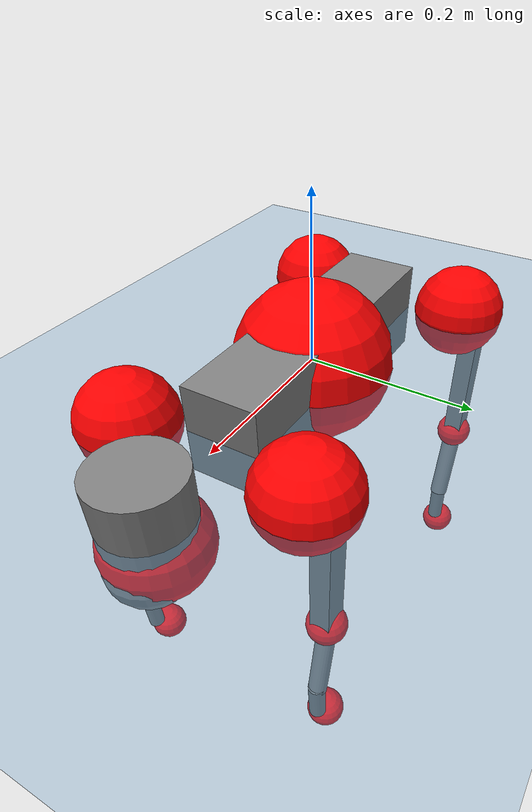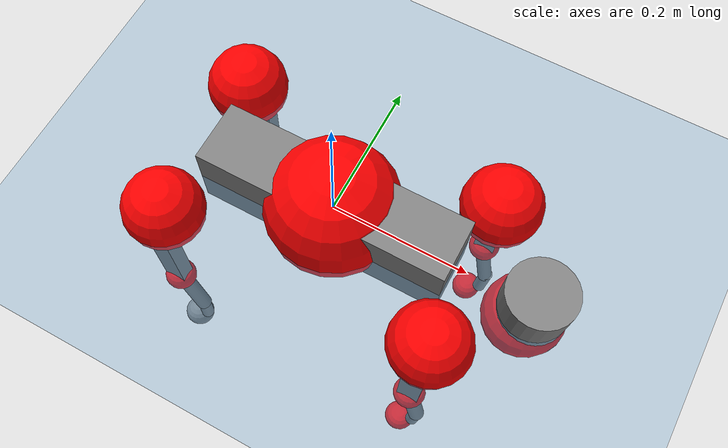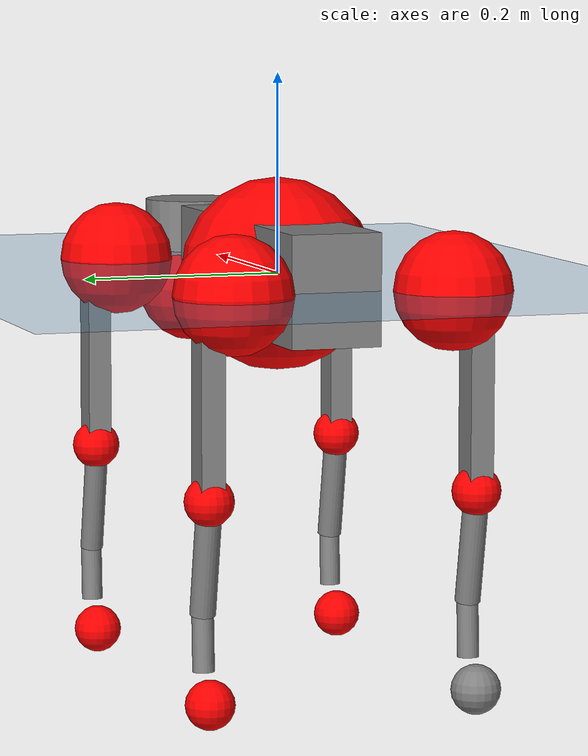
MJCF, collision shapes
<mujoco model="go2">
  <compiler angle="radian" assetdir="assets" balanceinertia="true" inertiafromgeom="false"/>

  <option timestep="0.005" density="1.2" viscosity="2e-05"/>

  <size nkey="1"/>

  <visual>
    <quality shadowsize="8192"/>
    <map shadowclip="0.5"/>
  </visual>

  <default>
    <default class="/">
      <geom contype="0" conaffinity="0" group="1" solref="-1000 -80"/>
      <site size="0.01 0.005 0.005" group="5"/>
      <general forcelimited="true" biastype="affine" gainprm="20" biasprm="0 -20 -0.5"/>
      <default class="go2">
        <joint armature="0.01" damping="0.01" frictionloss="0.2"/>
        <geom condim="1" margin="0.001"/>
        <default class="visual">
          <geom type="mesh" group="2"/>
        </default>
        <default class="collision">
          <geom group="3"/>
          <default class="foot">
            <geom size="0.022 0 0" condim="6" priority="1" friction="0.8 0.02 0.01" solimp="0.015 1 0.022"/>
          </default>
        </default>
        <default class="reward_collision_sphere">
          <geom group="5" rgba="1 0 0 1"/>
        </default>
      </default>
    </default>
  </default>

  <asset>
    <texture type="skybox" colorspace="auto" name="//unnamed_texture_0" builtin="gradient" rgb1="0.95 0.95 0.95" rgb2="0.95 0.95 0.95" width="100" height="600"/>
    <texture type="2d" colorspace="auto" name="texplane" builtin="checker" rgb1="0.345 0.575 0.748" rgb2="0.345 0.575 0.748" markrgb="1 1 1" width="512" height="512"/>
    <material name="MatPlane" class="/" texture="texplane" texuniform="true" texrepeat="2 2" specular="0.9"/>
    <material name="metal" class="/" rgba="0.9 0.95 0.95 1"/>
    <material name="black" class="/" rgba="0 0 0 1"/>
    <material name="white" class="/"/>
    <material name="gray" class="/" rgba="0.671705 0.692426 0.77427 1"/>
    <mesh name="base_0" class="/" file="base_0.obj"/>
    <mesh name="base_1" class="/" file="base_1.obj"/>
    <mesh name="base_2" class="/" file="base_2.obj"/>
    <mesh name="base_3" class="/" file="base_3.obj"/>
    <mesh name="base_4" class="/" file="base_4.obj"/>
    <mesh name="hip_0" class="/" file="hip_0.obj"/>
    <mesh name="hip_1" class="/" file="hip_1.obj"/>
    <mesh name="thigh_0" class="/" file="thigh_0.obj"/>
    <mesh name="thigh_1" class="/" file="thigh_1.obj"/>
    <mesh name="thigh_mirror_0" class="/" file="thigh_mirror_0.obj"/>
    <mesh name="thigh_mirror_1" class="/" file="thigh_mirror_1.obj"/>
    <mesh name="calf_0" class="/" file="calf_0.obj"/>
    <mesh name="calf_1" class="/" file="calf_1.obj"/>
    <mesh name="calf_mirror_0" class="/" file="calf_mirror_0.obj"/>
    <mesh name="calf_mirror_1" class="/" file="calf_mirror_1.obj"/>
    <mesh name="foot" class="/" file="foot.obj"/>
  </asset>

  <worldbody>
    <geom name="floor" class="/" size="100 100 0.125" type="plane" group="0" material="MatPlane"/>
    <light name="toplight_shadow" class="/" pos="0 0 5" dir="0.0990148 0.0990148 -0.990148" type="directional" ambient="0.04 0.04 0.04" diffuse="0.55 0.55 0.55" specular="0.12 0.12 0.12"/>
    <light name="toplight_fill" class="/" pos="0 0 5" dir="0.0990148 0.0990148 -0.990148" type="directional" castshadow="false" ambient="0.04 0.04 0.04" diffuse="0.3 0.3 0.3" specular="0.08 0.08 0.08"/>
    <body name="trunk" childclass="go2" pos="-6.27479e-05 0.00073114 0.000173393" quat="1 -0.000216542 0.000278449 5.95329e-05">
      <inertial pos="0.0227342 -0.00116683 -0.00543931" quat="-0.00434153 0.713403 0.0010931 0.700739" mass="6.12113" diaginertia="0.12356 0.0735346 0.0155372"/>
      <joint name="//unnamed_joint_0" type="free" armature="0" damping="0" frictionloss="0"/>
      <geom name="//unnamed_geom_1" class="visual" material="black" mesh="base_0"/>
      <geom name="//unnamed_geom_2" class="visual" material="black" mesh="base_1"/>
      <geom name="//unnamed_geom_3" class="visual" material="black" mesh="base_2"/>
      <geom name="//unnamed_geom_4" class="visual" material="white" mesh="base_3"/>
      <geom name="//unnamed_geom_5" class="visual" material="gray" mesh="base_4"/>
      <geom name="trunk_1" class="collision" size="0.181657 0.0451487 0.0550476" type="box"/>
      <geom name="trunk_2" class="collision" size="0.0482873 0.0434586" pos="0.294936 0 0.00915848" type="cylinder"/>
      <geom name="trunk_3" class="collision" size="0.0453901" pos="0.303215 0 -0.0549509"/>
      <geom name="//unnamed_geom_9" class="reward_collision_sphere" size="0.0965747"/>
      <geom name="//unnamed_geom_10" class="reward_collision_sphere" size="0.0579448" pos="0.289762 0 -0.0412132"/>
      <site name="imu" pos="-0.0272539 -0.00133017 0.0373989" size="0.00965747"/>
      <camera name="track" pos="0 -1.89306 0" quat="0.707107 0.707107 0 0" mode="trackcom"/>
      <camera name="ego_camera" pos="0.322877 0 0.0412132" quat="-0.5 -0.5 0.5 0.5"/>
      <body name="FL_hip" pos="0.199448 0.0442281 0.000507057" quat="1 3.32686e-07 6.99819e-06 -4.37653e-06">
        <inertial pos="-0.00560066 0.00220004 -0.00015078" quat="0.49759 0.498559 0.500017 0.503812" mass="0.612696" diaginertia="0.0010577 0.000460239 0.000312187"/>
        <joint name="FL_hip_joint" pos="0 0 0" axis="1 0.000155901 -0.000834093" stiffness="0.00965835" range="-1.02886 1.03879" armature="0.00975566" damping="0.00805904" frictionloss="0.191189"/>
        <geom name="//unnamed_geom_11" class="visual" material="metal" mesh="hip_0"/>
        <geom name="//unnamed_geom_12" class="visual" material="gray" mesh="hip_1"/>
        <geom name="//unnamed_geom_13" class="collision" size="0.0444243 0.0193149" pos="0 0.0757222 0" quat="0.707107 0.707107 0 0" type="cylinder"/>
        <geom name="//unnamed_geom_14" class="reward_collision_sphere" size="0.0579448" pos="0 0.066257 0"/>
        <body name="FL_thigh" pos="-0.00100357 0.0892958 0.000378265" quat="1 0.000472632 -0.000397716 0.000119681">
          <inertial pos="-0.00379606 -0.0195565 -0.0300807" quat="0.827713 0.0859223 -0.0202553 0.554165" mass="1.02813" diaginertia="0.0070453 0.00451046 0.00056835"/>
          <joint name="FL_thigh_joint" pos="0 0 0" axis="-0.00375511 0.999992 0.00155891" stiffness="0.00348165" range="-1.554 3.47912" armature="0.0102507" damping="0.00782305" frictionloss="0.202227"/>
          <geom name="//unnamed_geom_15" class="visual" material="metal" mesh="thigh_0"/>
          <geom name="//unnamed_geom_16" class="visual" material="gray" mesh="thigh_1"/>
          <geom name="//unnamed_geom_17" class="collision" size="0.102852 0.0118304 0.0164177" pos="0 0 -0.0975378" quat="0.707107 0 0.707107 0" type="box"/>
          <body name="FL_calf" pos="-0.000790257 0.000334283 -0.195454" quat="1 -3.37244e-05 -3.32843e-05 -5.13848e-05">
            <inertial pos="0.00621523 0.000342946 -0.128896" quat="0.709464 0.00251766 -0.00326462 0.70473" mass="0.218636" diaginertia="0.00178961 0.00113387 3.45313e-05"/>
            <joint name="FL_calf_joint" pos="0 0 0" axis="-0.000241409 1 0.000452587" stiffness="0.000206029" range="-2.69835 -0.838571" armature="0.0101453" damping="0.00275999" frictionloss="0.190454"/>
            <geom name="//unnamed_geom_18" class="visual" material="gray" mesh="calf_0"/>
            <geom name="//unnamed_geom_19" class="visual" material="black" mesh="calf_1"/>
            <geom name="FL_calf0" class="collision" size="0.011589 0.0579448" pos="0.00827891 0 -0.0549509" quat="0.994493 0 -0.104807 0" type="cylinder"/>
            <geom name="//unnamed_geom_21" class="collision" size="0.0106232 0.0313868" pos="0.0206973 0 -0.135546" quat="0.999688 0 0.0249974 0" type="cylinder"/>
            <geom name="//unnamed_geom_22" class="visual" pos="0 0 -0.195076" quat="1 0 0 0" material="black" mesh="foot"/>
            <geom name="FL_foot" class="foot" size="0.0163647" pos="-0.00206973 0 -0.195076"/>
            <geom name="//unnamed_geom_24" class="reward_collision_sphere" size="0.0241437"/>
            <geom name="//unnamed_geom_25" class="reward_collision_sphere" size="0.0241437" pos="-0.00206973 0 -0.195076"/>
            <site name="FL_foot" class="foot" pos="-0.00206973 0 -0.195076" size="0.00965747"/>
          </body>
        </body>
      </body>
      <body name="FR_hip" pos="0.199479 -0.0422503 -0.000431495" quat="1 3.91578e-06 0.000136314 -9.87736e-05">
        <inertial pos="-0.00575847 -0.00225471 -0.00033298" quat="0.49823 0.503454 0.501179 0.497112" mass="0.614848" diaginertia="0.0010565 0.000453127 0.000307539"/>
        <joint name="FR_hip_joint" pos="0 0 0" axis="0.999968 -0.00725729 0.00324073" range="-1.04208 1.05261" armature="0.0101388" damping="0.0180261" frictionloss="0.193169"/>
        <geom name="//unnamed_geom_26" class="visual" pos="0 2.67269e-10 1.14637e-08" quat="4.63268e-05 1 0 0" material="metal" mesh="hip_0"/>
        <geom name="//unnamed_geom_27" class="visual" pos="0 4.33276e-10 -2.83542e-08" quat="4.63268e-05 1 0 0" material="gray" mesh="hip_1"/>
        <geom name="//unnamed_geom_28" class="collision" size="0.0444243 0.0193149" pos="0 -0.0757222 0" quat="0.707107 0.707107 0 0" type="cylinder"/>
        <geom name="//unnamed_geom_29" class="reward_collision_sphere" size="0.0579448" pos="0 -0.066257 0"/>
        <body name="FR_thigh" pos="-0.00029488 -0.0900102 -0.00033593" quat="1 1.20093e-05 -5.41688e-05 8.21801e-05">
          <inertial pos="-0.00498382 0.0220196 -0.0290207" quat="0.551007 -0.0210418 0.0866907 0.829719" mass="1.03854" diaginertia="0.0071363 0.00444198 0.000566811"/>
          <joint name="FR_thigh_joint" pos="0 0 0" axis="0.000127757 -1 -7.80851e-05" stiffness="0.00641644" range="-3.48577 1.56496" armature="0.00944539" damping="0.012061" frictionloss="0.201609"/>
          <geom name="//unnamed_geom_30" class="visual" material="metal" mesh="thigh_mirror_0"/>
          <geom name="//unnamed_geom_31" class="visual" material="gray" mesh="thigh_mirror_1"/>
          <geom name="//unnamed_geom_32" class="collision" size="0.102852 0.0118304 0.0164177" pos="0 0 -0.0975378" quat="0.707107 0 0.707107 0" type="box"/>
          <body name="FR_calf" pos="-8.1253e-05 0.000200776 -0.194234" quat="1 -1.56715e-05 0.000125789 0.000185864">
            <inertial pos="0.00733308 -9.50179e-06 -0.129614" quat="0.705661 -0.00431669 -0.000604899 0.708536" mass="0.22093" diaginertia="0.00181032 0.00112108 3.51665e-05"/>
            <joint name="FR_calf_joint" pos="0 0 0" axis="-3.59519e-05 -1 3.563e-05" range="0.83448 2.72313" armature="0.00940868" damping="0.00680347" frictionloss="0.198351"/>
            <geom name="//unnamed_geom_33" class="visual" material="gray" mesh="calf_mirror_0"/>
            <geom name="//unnamed_geom_34" class="visual" material="black" mesh="calf_mirror_1"/>
            <geom name="FR_calf0" class="collision" size="0.0125547 0.0579448" pos="0.0103486 0 -0.0549509" quat="0.995004 0 -0.0998334 0" type="cylinder"/>
            <geom name="//unnamed_geom_36" class="collision" size="0.0106232 0.0313868" pos="0.0206973 0 -0.135546" quat="0.999688 0 0.0249974 0" type="cylinder"/>
            <geom name="//unnamed_geom_37" class="visual" pos="0 0 -0.195076" quat="1 0 0 0" material="black" mesh="foot"/>
            <geom name="FR_foot" class="foot" size="0.0209235" pos="-0.00206973 0 -0.195076"/>
            <geom name="//unnamed_geom_39" class="reward_collision_sphere" size="0.0241437"/>
            <geom name="//unnamed_geom_40" class="reward_collision_sphere" size="0.0241437" pos="-0.00206973 0 -0.195076"/>
            <site name="FR_foot" class="foot" pos="-0.00206973 0 -0.195076" size="0.00965747"/>
          </body>
        </body>
      </body>
      <body name="RL_hip" pos="-0.200097 0.0430406 0.00168008" quat="1 0.000198958 -0.000351145 0.000315679">
        <inertial pos="0.00599271 0.001594 -0.000865276" quat="0.505387 0.49798 0.49829 0.498304" mass="0.604879" diaginertia="0.00105112 0.000461619 0.000308034"/>
        <joint name="RL_hip_joint" pos="0 0 0" axis="-0.99984 -0.0162597 -0.00750935" stiffness="0.00417555" range="-1.0431 1.06031" armature="0.00947429" damping="0.0150868" frictionloss="0.190157"/>
        <geom name="//unnamed_geom_41" class="visual" pos="-1.03682e-09 0 -2.0324e-07" quat="4.63268e-05 0 1 0" material="metal" mesh="hip_0"/>
        <geom name="//unnamed_geom_42" class="visual" pos="-1.6808e-09 0 -1.80245e-07" quat="4.63268e-05 0 1 0" material="gray" mesh="hip_1"/>
        <geom name="//unnamed_geom_43" class="collision" size="0.0444243 0.0193149" pos="0 0.0757222 0" quat="0.707107 0.707107 0 0" type="cylinder"/>
        <geom name="//unnamed_geom_44" class="reward_collision_sphere" size="0.0579448" pos="0 0.066257 0"/>
        <body name="RL_thigh" pos="-0.000359928 0.0912971 0.000315278" quat="1 0.000290193 0.000182059 0.000104192">
          <inertial pos="-0.00364269 -0.019254 -0.0306541" quat="0.830131 0.0858837 -0.0201398 0.550546" mass="1.0218" diaginertia="0.00713514 0.00437996 0.000568406"/>
          <joint name="RL_thigh_joint" pos="0 0 0" axis="0.0036546 0.99999 -0.00238686" stiffness="0.00103576" range="-0.530613 4.54369" armature="0.00929296" damping="0.00649125" frictionloss="0.202313"/>
          <geom name="//unnamed_geom_45" class="visual" material="metal" mesh="thigh_0"/>
          <geom name="//unnamed_geom_46" class="visual" material="gray" mesh="thigh_1"/>
          <geom name="//unnamed_geom_47" class="collision" size="0.102852 0.0118304 0.0164177" pos="0 0 -0.0975378" quat="0.707107 0 0.707107 0" type="box"/>
          <body name="RL_calf" pos="0.000337992 -0.00074614 -0.195216" quat="1 4.60214e-05 -0.000338506 -9.72324e-05">
            <inertial pos="0.00619347 -0.000341213 -0.129471" quat="0.711157 0.00225263 -0.0044804 0.703015" mass="0.219176" diaginertia="0.00179228 0.00112571 3.45704e-05"/>
            <joint name="RL_calf_joint" pos="0 0 0" axis="0.00494503 0.999984 -0.00259569" stiffness="0.0031791" range="-2.69879 -0.832418" armature="0.0102937" damping="0" frictionloss="0.201188"/>
            <geom name="//unnamed_geom_48" class="visual" material="gray" mesh="calf_0"/>
            <geom name="//unnamed_geom_49" class="visual" material="black" mesh="calf_1"/>
            <geom name="RL_calf0" class="collision" size="0.0125547 0.0579448" pos="0.0103486 0 -0.0549509" quat="0.995004 0 -0.0998334 0" type="cylinder"/>
            <geom name="//unnamed_geom_51" class="collision" size="0.0106232 0.0313868" pos="0.0206973 0 -0.135546" quat="0.999688 0 0.0249974 0" type="cylinder"/>
            <geom name="//unnamed_geom_52" class="visual" pos="0 0 -0.195076" quat="1 0 0 0" material="black" mesh="foot"/>
            <geom name="RL_foot" class="foot" size="0.0191118" pos="-0.00206973 0 -0.195076"/>
            <geom name="//unnamed_geom_54" class="reward_collision_sphere" size="0.0241437"/>
            <geom name="//unnamed_geom_55" class="reward_collision_sphere" size="0.0241437" pos="-0.00206973 0 -0.195076"/>
            <site name="RL_foot" class="foot" pos="-0.00206973 0 -0.195076" size="0.00965747"/>
          </body>
        </body>
      </body>
      <body name="RR_hip" pos="-0.200846 -0.0451722 -0.00102845" quat="1 0.000481186 -0.00032181 0.000480512">
        <inertial pos="0.00530362 -0.00179895 0.000169579" quat="0.499061 0.4965 0.49904 0.505356" mass="0.616982" diaginertia="0.00106049 0.000457133 0.00031884"/>
        <joint name="RR_hip_joint" pos="0 0 0" axis="-1 0.000944308 0.000281301" range="-1.056 1.03298" armature="0.00999691" damping="0.00620741" frictionloss="0.184678"/>
        <geom name="//unnamed_geom_56" class="visual" pos="1.03376e-09 2.67269e-10 -2.14703e-07" quat="2.14617e-09 4.63268e-05 4.63268e-05 -1" material="metal" mesh="hip_0"/>
        <geom name="//unnamed_geom_57" class="visual" pos="1.68837e-09 4.33276e-10 -1.5189e-07" quat="2.14617e-09 4.63268e-05 4.63268e-05 -1" material="gray" mesh="hip_1"/>
        <geom name="//unnamed_geom_58" class="collision" size="0.0444243 0.0193149" pos="0 -0.0757222 0" quat="0.707107 0.707107 0 0" type="cylinder"/>
        <geom name="//unnamed_geom_59" class="reward_collision_sphere" size="0.0579448" pos="0 -0.066257 0"/>
        <body name="RR_thigh" pos="0.00132017 -0.0912488 -0.000149059" quat="1 -2.70915e-05 0.000494836 -9.86495e-05">
          <inertial pos="-0.00373611 0.0215626 -0.0297817" quat="0.551914 -0.0190317 0.0825508 0.829587" mass="1.0405" diaginertia="0.0070699 0.00445944 0.000574088"/>
          <joint name="RR_thigh_joint" pos="0 0 0" axis="-0.000596709 -0.999965 0.00830623" range="-4.54431 0.552224" armature="0.00909275" damping="0.01129" frictionloss="0.194527"/>
          <geom name="//unnamed_geom_60" class="visual" material="metal" mesh="thigh_mirror_0"/>
          <geom name="//unnamed_geom_61" class="visual" material="gray" mesh="thigh_mirror_1"/>
          <geom name="//unnamed_geom_62" class="collision" size="0.102852 0.0118304 0.0164177" pos="0 0 -0.0975378" quat="0.707107 0 0.707107 0" type="box"/>
          <body name="RR_calf" pos="0.000424616 -0.000678699 -0.195341" quat="1 9.2306e-05 -7.59386e-05 0.000275991">
            <inertial pos="0.00730187 0.000931178 -0.129454" quat="0.703544 -0.00442034 0.00134725 0.710637" mass="0.215313" diaginertia="0.00176752 0.0010988 3.41787e-05"/>
            <joint name="RR_calf_joint" pos="0 0 0" axis="-0.00223605 -0.999978 -0.00623103" stiffness="0.00152814" range="0.846938 2.70876" armature="0.00948695" damping="0.00864893" frictionloss="0.183893"/>
            <geom name="//unnamed_geom_63" class="visual" material="gray" mesh="calf_mirror_0"/>
            <geom name="//unnamed_geom_64" class="visual" material="black" mesh="calf_mirror_1"/>
            <geom name="RR_calf0" class="collision" size="0.0125547 0.0579448" pos="0.0103486 0 -0.0549509" quat="0.995004 0 -0.0998334 0" type="cylinder"/>
            <geom name="//unnamed_geom_66" class="collision" size="0.0106232 0.0313868" pos="0.0206973 0 -0.135546" quat="0.999688 0 0.0249974 0" type="cylinder"/>
            <geom name="//unnamed_geom_67" class="visual" pos="0 0 -0.195076" quat="1 0 0 0" material="black" mesh="foot"/>
            <geom name="RR_foot" class="foot" size="0.0246018" pos="-0.00206973 0 -0.195076"/>
            <geom name="//unnamed_geom_69" class="reward_collision_sphere" size="0.0241437"/>
            <geom name="//unnamed_geom_70" class="reward_collision_sphere" size="0.0241437" pos="-0.00206973 0 -0.195076"/>
            <site name="RR_foot" class="foot" pos="-0.00206973 0 -0.195076" size="0.00965747"/>
          </body>
        </body>
      </body>
    </body>
  </worldbody>

  <contact>
    <pair class="/" geom1="floor" geom2="FL_foot" name="//unnamed_contact_0"/>
    <pair class="/" geom1="floor" geom2="FR_foot" name="//unnamed_contact_1"/>
    <pair class="/" geom1="floor" geom2="RL_foot" name="//unnamed_contact_2"/>
    <pair class="/" geom1="floor" geom2="RR_foot" name="//unnamed_contact_3"/>
  </contact>

  <actuator>
    <general name="FL_hip" class="/" joint="FL_hip_joint" forcerange="-22.0433 22.0433" gainprm="19.3407" biasprm="0 -19.3407 -0.479402"/>
    <general name="FL_thigh" class="/" joint="FL_thigh_joint" forcerange="-22.7488 22.7488" gainprm="19.3407" biasprm="0 -19.3407 -0.479402"/>
    <general name="FL_calf" class="/" joint="FL_calf_joint" forcerange="-43.2031 43.2031" gainprm="19.3407" biasprm="0 -19.3407 -0.479402"/>
    <general name="FR_hip" class="/" joint="FR_hip_joint" forcerange="-23.6246 23.6246" gainprm="19.3407" biasprm="0 -19.3407 -0.479402"/>
    <general name="FR_thigh" class="/" joint="FR_thigh_joint" forcerange="-23.0977 23.0977" gainprm="19.3407" biasprm="0 -19.3407 -0.479402"/>
    <general name="FR_calf" class="/" joint="FR_calf_joint" forcerange="-44.3816 44.3816" gainprm="19.3407" biasprm="0 -19.3407 -0.479402"/>
    <general name="RL_hip" class="/" joint="RL_hip_joint" forcerange="-23.1943 23.1943" gainprm="19.3407" biasprm="0 -19.3407 -0.479402"/>
    <general name="RL_thigh" class="/" joint="RL_thigh_joint" forcerange="-23.0577 23.0577" gainprm="19.3407" biasprm="0 -19.3407 -0.479402"/>
    <general name="RL_calf" class="/" joint="RL_calf_joint" forcerange="-43.388 43.388" gainprm="19.3407" biasprm="0 -19.3407 -0.479402"/>
    <general name="RR_hip" class="/" joint="RR_hip_joint" forcerange="-23.6993 23.6993" gainprm="19.3407" biasprm="0 -19.3407 -0.479402"/>
    <general name="RR_thigh" class="/" joint="RR_thigh_joint" forcerange="-22.4401 22.4401" gainprm="19.3407" biasprm="0 -19.3407 -0.479402"/>
    <general name="RR_calf" class="/" joint="RR_calf_joint" forcerange="-45.0404 45.0404" gainprm="19.3407" biasprm="0 -19.3407 -0.479402"/>
  </actuator>

  <sensor>
    <gyro site="imu" name="imu_angular_velocity"/>
    <velocimeter site="imu" name="imu_linear_velocity"/>
    <framelinvel objtype="site" objname="FL_foot" name="FL_foot_global_linear_velocity"/>
    <framelinvel objtype="site" objname="FR_foot" name="FR_foot_global_linear_velocity"/>
    <framelinvel objtype="site" objname="RL_foot" name="RL_foot_global_linear_velocity"/>
    <framelinvel objtype="site" objname="RR_foot" name="RR_foot_global_linear_velocity"/>
  </sensor>

  <keyframe>
    <key name="home" qpos="0 0 0.325 1 0 0 0 0.1 0.8 -1.5 -0.1 -0.8 1.5 -0.1 0.8 -1.5 0.1 -0.8 1.5"/>
  </keyframe>
</mujoco>
